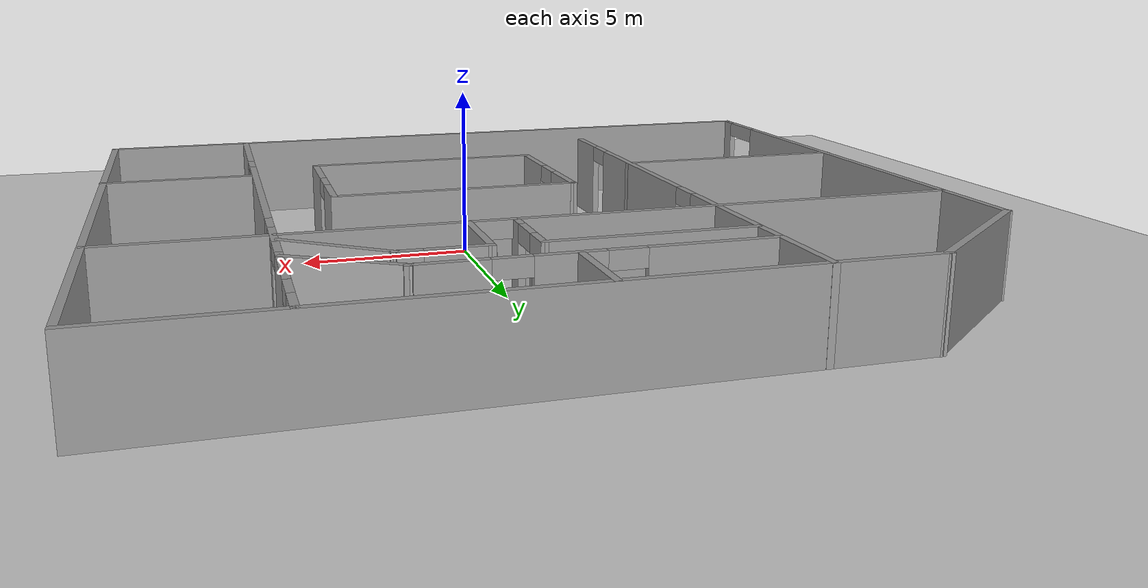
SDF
<sdf version="1.4">
 <world name="default">
  <light name="sun" type="directional">
   <pose>0 0 10 0 -0 0</pose>
   <diffuse>0.8 0.8 0.8 1</diffuse>
   <specular>0.2 0.2 0.2 1</specular>
   <attenuation>
    <range>1000</range>
    <constant>0.9</constant>
    <linear>0.01</linear>
    <quadratic>0.001</quadratic>
   </attenuation>
   <direction>-0.5 0.1 -0.9</direction>
  </light>
  <model name="ground_plane">
   <static>1</static>
   <link name="link">
    <collision name="collision">
     <geometry><plane><normal>0 0 1</normal><size>100 100</size></plane></geometry>
     <surface><friction><ode><mu>100</mu><mu2>50</mu2></ode></friction></surface>
    </collision>
    <visual name="visual">
     <cast_shadows>0</cast_shadows>
     <geometry><plane><normal>0 0 1</normal><size>100 100</size></plane></geometry>
     <material>
      <script><uri>file://media/materials/scripts/gazebo.material</uri><name>Gazebo/Grey</name></script>
     </material>
    </visual>
    <velocity_decay><linear>0</linear><angular>0</angular></velocity_decay>
   </link>
  </model>
  <physics type="ode">
   <max_step_size>0.001</max_step_size>
   <real_time_factor>1</real_time_factor>
   <real_time_update_rate>1000</real_time_update_rate>
   <gravity>0 0 -9.8</gravity>
  </physics>
  <scene><ambient>0.4 0.4 0.4 1</ambient><background>0.7 0.7 0.7 1</background><shadows>1</shadows></scene>
  <spherical_coordinates>
   <surface_model>EARTH_WGS84</surface_model>
   <latitude_deg>0</latitude_deg>
   <longitude_deg>0</longitude_deg>
   <elevation>0</elevation>
   <heading_deg>0</heading_deg>
  </spherical_coordinates>
  <model name="Assignment3">
   <link name="Wall_11">
    <collision name="Wall_11_Collision">
     <geometry><box><size>19.4074 0.2 2.5</size></box></geometry>
     <pose>0 0 1.25 0 -0 0</pose>
    </collision>
    <visual name="Wall_11_Visual">
     <pose>0 0 1.25 0 -0 0</pose>
     <geometry><box><size>19.4074 0.2 2.5</size></box></geometry>
     <material>
      <script><uri>file://media/materials/scripts/gazebo.material</uri><name>Gazebo/Grey</name></script>
     </material>
    </visual>
    <velocity_decay><linear>0</linear><angular>0</angular></velocity_decay>
    <pose>0.027658 9.62842 0 0 -0 0</pose>
   </link>
   <link name="Wall_12">
    <collision name="Wall_12_Collision">
     <geometry><box><size>19.7819 0.2 2.5</size></box></geometry>
     <pose>0 0 1.25 0 -0 0</pose>
    </collision>
    <visual name="Wall_12_Visual">
     <pose>0 0 1.25 0 -0 0</pose>
     <geometry><box><size>19.7819 0.2 2.5</size></box></geometry>
     <material>
      <script><uri>file://media/materials/scripts/gazebo.material</uri><name>Gazebo/Grey</name></script>
     </material>
    </visual>
    <velocity_decay><linear>0</linear><angular>0</angular></velocity_decay>
    <pose>9.63136 -0.162543 0 0 0 -1.5708</pose>
   </link>
   <link name="Wall_13">
    <collision name="Wall_13_Collision">
     <geometry><box><size>23.541 0.2 2.5</size></box></geometry>
     <pose>0 0 1.25 0 -0 0</pose>
    </collision>
    <visual name="Wall_13_Visual">
     <pose>0 0 1.25 0 -0 0</pose>
     <geometry><box><size>23.541 0.2 2.5</size></box></geometry>
     <material>
      <script><uri>file://media/materials/scripts/gazebo.material</uri><name>Gazebo/Grey</name></script>
     </material>
    </visual>
    <velocity_decay><linear>0</linear><angular>0</angular></velocity_decay>
    <pose>-2.03882 -10.0482 0 0 0 -3.13347</pose>
   </link>
   <link name="Wall_14">
    <pose>-13.709 -1.8545 0 0 -0 1.5708</pose>
    <visual name="Wall_14_Visual_0">
     <pose>-8.04138 0 1.25 0 -0 0</pose>
     <geometry><box><size>0.694477 0.2 2.5</size></box></geometry>
     <material>
      <script><uri>file://media/materials/scripts/gazebo.material</uri><name>Gazebo/Grey</name></script>
     </material>
    </visual>
    <collision name="Wall_14_Collision_0">
     <geometry><box><size>0.694477 0.2 2.5</size></box></geometry>
     <pose>-8.04138 0 1.25 0 -0 0</pose>
    </collision>
    <visual name="Wall_14_Visual_1">
     <pose>1.17291 0 1.25 0 -0 0</pose>
     <geometry><box><size>14.4314 0.2 2.5</size></box></geometry>
     <material>
      <script><uri>file://media/materials/scripts/gazebo.material</uri><name>Gazebo/Grey</name></script>
     </material>
    </visual>
    <collision name="Wall_14_Collision_1">
     <geometry><box><size>14.4314 0.2 2.5</size></box></geometry>
     <pose>1.17291 0 1.25 0 -0 0</pose>
    </collision>
    <visual name="Wall_14_Visual_2">
     <pose>-6.86847 0 2.25 0 -0 0</pose>
     <geometry><box><size>1.65133 0.2 0.5</size></box></geometry>
     <material>
      <script><uri>file://media/materials/scripts/gazebo.material</uri><name>Gazebo/Grey</name></script>
     </material>
    </visual>
    <collision name="Wall_14_Collision_2">
     <geometry><box><size>1.65133 0.2 0.5</size></box></geometry>
     <pose>-6.86847 0 2.25 0 -0 0</pose>
    </collision>
    <velocity_decay><linear>0</linear><angular>0</angular></velocity_decay>
   </link>
   <link name="Wall_15">
    <collision name="Wall_15_Collision">
     <geometry><box><size>5.44757 0.2 2.5</size></box></geometry>
     <pose>0 0 1.25 0 -0 0</pose>
    </collision>
    <visual name="Wall_15_Visual">
     <pose>0 0 1.25 0 -0 0</pose>
     <geometry><box><size>5.44757 0.2 2.5</size></box></geometry>
     <material>
      <script><uri>file://media/materials/scripts/gazebo.material</uri><name>Gazebo/Grey</name></script>
     </material>
    </visual>
    <velocity_decay><linear>0</linear><angular>0</angular></velocity_decay>
    <pose>-11.6272 8.03121 0 0 -0 0.65444</pose>
   </link>
   <link name="Wall_17">
    <pose>-2.05638 3.72603 0 0 -0 0</pose>
    <visual name="Wall_17_Visual_0">
     <pose>-5.32172 0 1.25 0 -0 0</pose>
     <geometry><box><size>12.865 0.2 2.5</size></box></geometry>
     <material>
      <script><uri>file://media/materials/scripts/gazebo.material</uri><name>Gazebo/Grey</name></script>
     </material>
    </visual>
    <collision name="Wall_17_Collision_0">
     <geometry><box><size>12.865 0.2 2.5</size></box></geometry>
     <pose>-5.32172 0 1.25 0 -0 0</pose>
    </collision>
    <visual name="Wall_17_Visual_1">
     <pose>7.09252 0 1.25 0 -0 0</pose>
     <geometry><box><size>9.32345 0.2 2.5</size></box></geometry>
     <material>
      <script><uri>file://media/materials/scripts/gazebo.material</uri><name>Gazebo/Grey</name></script>
     </material>
    </visual>
    <collision name="Wall_17_Collision_1">
     <geometry><box><size>9.32345 0.2 2.5</size></box></geometry>
     <pose>7.09252 0 1.25 0 -0 0</pose>
    </collision>
    <visual name="Wall_17_Visual_2">
     <pose>1.77079 0 2.25 0 -0 0</pose>
     <geometry><box><size>1.32 0.2 0.5</size></box></geometry>
     <material>
      <script><uri>file://media/materials/scripts/gazebo.material</uri><name>Gazebo/Grey</name></script>
     </material>
    </visual>
    <collision name="Wall_17_Collision_2">
     <geometry><box><size>1.32 0.2 0.5</size></box></geometry>
     <pose>1.77079 0 2.25 0 -0 0</pose>
    </collision>
    <velocity_decay><linear>0</linear><angular>0</angular></velocity_decay>
   </link>
   <link name="Wall_19">
    <pose>5.225 -0.1585 0 0 0 -1.5708</pose>
    <visual name="Wall_19_Visual_0">
     <pose>-9.32361 0 1.25 0 -0 0</pose>
     <geometry><box><size>1.04631 0.2 2.5</size></box></geometry>
     <material>
      <script><uri>file://media/materials/scripts/gazebo.material</uri><name>Gazebo/Grey</name></script>
     </material>
    </visual>
    <collision name="Wall_19_Collision_0">
     <geometry><box><size>1.04631 0.2 2.5</size></box></geometry>
     <pose>-9.32361 0 1.25 0 -0 0</pose>
    </collision>
    <visual name="Wall_19_Visual_1">
     <pose>-6.67404 0 1.25 0 -0 0</pose>
     <geometry><box><size>2.25282 0.2 2.5</size></box></geometry>
     <material>
      <script><uri>file://media/materials/scripts/gazebo.material</uri><name>Gazebo/Grey</name></script>
     </material>
    </visual>
    <collision name="Wall_19_Collision_1">
     <geometry><box><size>2.25282 0.2 2.5</size></box></geometry>
     <pose>-6.67404 0 1.25 0 -0 0</pose>
    </collision>
    <visual name="Wall_19_Visual_2">
     <pose>-3.81282 0 1.25 0 -0 0</pose>
     <geometry><box><size>1.46962 0.2 2.5</size></box></geometry>
     <material>
      <script><uri>file://media/materials/scripts/gazebo.material</uri><name>Gazebo/Grey</name></script>
     </material>
    </visual>
    <collision name="Wall_19_Collision_2">
     <geometry><box><size>1.46962 0.2 2.5</size></box></geometry>
     <pose>-3.81282 0 1.25 0 -0 0</pose>
    </collision>
    <visual name="Wall_19_Visual_3">
     <pose>1.53936 0 1.25 0 -0 0</pose>
     <geometry><box><size>7.23473 0.2 2.5</size></box></geometry>
     <material>
      <script><uri>file://media/materials/scripts/gazebo.material</uri><name>Gazebo/Grey</name></script>
     </material>
    </visual>
    <collision name="Wall_19_Collision_3">
     <geometry><box><size>7.23473 0.2 2.5</size></box></geometry>
     <pose>1.53936 0 1.25 0 -0 0</pose>
    </collision>
    <visual name="Wall_19_Visual_4">
     <pose>8.00174 0 1.25 0 -0 0</pose>
     <geometry><box><size>3.69003 0.2 2.5</size></box></geometry>
     <material>
      <script><uri>file://media/materials/scripts/gazebo.material</uri><name>Gazebo/Grey</name></script>
     </material>
    </visual>
    <collision name="Wall_19_Collision_4">
     <geometry><box><size>3.69003 0.2 2.5</size></box></geometry>
     <pose>8.00174 0 1.25 0 -0 0</pose>
    </collision>
    <visual name="Wall_19_Visual_5">
     <pose>-8.30045 0 2.25 0 -0 0</pose>
     <geometry><box><size>1 0.2 0.5</size></box></geometry>
     <material>
      <script><uri>file://media/materials/scripts/gazebo.material</uri><name>Gazebo/Grey</name></script>
     </material>
    </visual>
    <collision name="Wall_19_Collision_5">
     <geometry><box><size>1 0.2 0.5</size></box></geometry>
     <pose>-8.30045 0 2.25 0 -0 0</pose>
    </collision>
    <visual name="Wall_19_Visual_6">
     <pose>-5.04763 0 2.25 0 -0 0</pose>
     <geometry><box><size>1 0.2 0.5</size></box></geometry>
     <material>
      <script><uri>file://media/materials/scripts/gazebo.material</uri><name>Gazebo/Grey</name></script>
     </material>
    </visual>
    <collision name="Wall_19_Collision_6">
     <geometry><box><size>1 0.2 0.5</size></box></geometry>
     <pose>-5.04763 0 2.25 0 -0 0</pose>
    </collision>
    <visual name="Wall_19_Visual_7">
     <pose>-2.57801 0 2.25 0 -0 0</pose>
     <geometry><box><size>1 0.2 0.5</size></box></geometry>
     <material>
      <script><uri>file://media/materials/scripts/gazebo.material</uri><name>Gazebo/Grey</name></script>
     </material>
    </visual>
    <collision name="Wall_19_Collision_7">
     <geometry><box><size>1 0.2 0.5</size></box></geometry>
     <pose>-2.57801 0 2.25 0 -0 0</pose>
    </collision>
    <visual name="Wall_19_Visual_8">
     <pose>5.65672 0 2.25 0 -0 0</pose>
     <geometry><box><size>1 0.2 0.5</size></box></geometry>
     <material>
      <script><uri>file://media/materials/scripts/gazebo.material</uri><name>Gazebo/Grey</name></script>
     </material>
    </visual>
    <collision name="Wall_19_Collision_8">
     <geometry><box><size>1 0.2 0.5</size></box></geometry>
     <pose>5.65672 0 2.25 0 -0 0</pose>
    </collision>
    <velocity_decay><linear>0</linear><angular>0</angular></velocity_decay>
   </link>
   <link name="Wall_21">
    <pose>-6.59246 1.07417 0 0 0 -1.5708</pose>
    <visual name="Wall_21_Visual_0">
     <pose>-7.3949 0 1.25 0 -0 0</pose>
     <geometry><box><size>2.53101 0.2 2.5</size></box></geometry>
     <material>
      <script><uri>file://media/materials/scripts/gazebo.material</uri><name>Gazebo/Grey</name></script>
     </material>
    </visual>
    <collision name="Wall_21_Collision_0">
     <geometry><box><size>2.53101 0.2 2.5</size></box></geometry>
     <pose>-7.3949 0 1.25 0 -0 0</pose>
    </collision>
    <visual name="Wall_21_Visual_1">
     <pose>-3.13844 0 1.25 0 -0 0</pose>
     <geometry><box><size>3.98191 0.2 2.5</size></box></geometry>
     <material>
      <script><uri>file://media/materials/scripts/gazebo.material</uri><name>Gazebo/Grey</name></script>
     </material>
    </visual>
    <collision name="Wall_21_Collision_1">
     <geometry><box><size>3.98191 0.2 2.5</size></box></geometry>
     <pose>-3.13844 0 1.25 0 -0 0</pose>
    </collision>
    <visual name="Wall_21_Visual_2">
     <pose>2.9116 0 1.25 0 -0 0</pose>
     <geometry><box><size>6.11816 0.2 2.5</size></box></geometry>
     <material>
      <script><uri>file://media/materials/scripts/gazebo.material</uri><name>Gazebo/Grey</name></script>
     </material>
    </visual>
    <collision name="Wall_21_Collision_2">
     <geometry><box><size>6.11816 0.2 2.5</size></box></geometry>
     <pose>2.9116 0 1.25 0 -0 0</pose>
    </collision>
    <visual name="Wall_21_Visual_3">
     <pose>7.81554 0 1.25 0 -0 0</pose>
     <geometry><box><size>1.68972 0.2 2.5</size></box></geometry>
     <material>
      <script><uri>file://media/materials/scripts/gazebo.material</uri><name>Gazebo/Grey</name></script>
     </material>
    </visual>
    <collision name="Wall_21_Collision_3">
     <geometry><box><size>1.68972 0.2 2.5</size></box></geometry>
     <pose>7.81554 0 1.25 0 -0 0</pose>
    </collision>
    <visual name="Wall_21_Visual_4">
     <pose>-5.62939 0 2.25 0 -0 0</pose>
     <geometry><box><size>1 0.2 0.5</size></box></geometry>
     <material>
      <script><uri>file://media/materials/scripts/gazebo.material</uri><name>Gazebo/Grey</name></script>
     </material>
    </visual>
    <collision name="Wall_21_Collision_4">
     <geometry><box><size>1 0.2 0.5</size></box></geometry>
     <pose>-5.62939 0 2.25 0 -0 0</pose>
    </collision>
    <visual name="Wall_21_Visual_5">
     <pose>-0.647479 0 2.25 0 -0 0</pose>
     <geometry><box><size>1 0.2 0.5</size></box></geometry>
     <material>
      <script><uri>file://media/materials/scripts/gazebo.material</uri><name>Gazebo/Grey</name></script>
     </material>
    </visual>
    <collision name="Wall_21_Collision_5">
     <geometry><box><size>1 0.2 0.5</size></box></geometry>
     <pose>-0.647479 0 2.25 0 -0 0</pose>
    </collision>
    <visual name="Wall_21_Visual_6">
     <pose>6.47068 0 2.25 0 -0 0</pose>
     <geometry><box><size>1 0.2 0.5</size></box></geometry>
     <material>
      <script><uri>file://media/materials/scripts/gazebo.material</uri><name>Gazebo/Grey</name></script>
     </material>
    </visual>
    <collision name="Wall_21_Collision_6">
     <geometry><box><size>1 0.2 0.5</size></box></geometry>
     <pose>6.47068 0 2.25 0 -0 0</pose>
    </collision>
    <velocity_decay><linear>0</linear><angular>0</angular></velocity_decay>
   </link>
   <link name="Wall_25">
    <collision name="Wall_25_Collision">
     <geometry><box><size>4.57325 0.2 2.5</size></box></geometry>
     <pose>0 0 1.25 0 -0 0</pose>
    </collision>
    <visual name="Wall_25_Visual">
     <pose>0 0 1.25 0 -0 0</pose>
     <geometry><box><size>4.57325 0.2 2.5</size></box></geometry>
     <material>
      <script><uri>file://media/materials/scripts/gazebo.material</uri><name>Gazebo/Grey</name></script>
     </material>
    </visual>
    <velocity_decay><linear>0</linear><angular>0</angular></velocity_decay>
    <pose>7.45776 -3.90389 0 0 -0 0</pose>
   </link>
   <link name="Wall_27">
    <collision name="Wall_27_Collision">
     <geometry><box><size>7.27163 0.2 2.5</size></box></geometry>
     <pose>0 0 1.25 0 -0 0</pose>
    </collision>
    <visual name="Wall_27_Visual">
     <pose>0 0 1.25 0 -0 0</pose>
     <geometry><box><size>7.27163 0.2 2.5</size></box></geometry>
     <material>
      <script><uri>file://media/materials/scripts/gazebo.material</uri><name>Gazebo/Grey</name></script>
     </material>
    </visual>
    <velocity_decay><linear>0</linear><angular>0</angular></velocity_decay>
    <pose>-0.265014 -0.228249 0 0 -0 7.1e-05</pose>
   </link>
   <link name="Wall_28">
    <pose>3.271 -2.601 0 0 0 -1.5708</pose>
    <visual name="Wall_28_Visual_0">
     <pose>-1.57737 0 1.25 0 -0 0</pose>
     <geometry><box><size>1.7907 0.2 2.5</size></box></geometry>
     <material>
      <script><uri>file://media/materials/scripts/gazebo.material</uri><name>Gazebo/Grey</name></script>
     </material>
    </visual>
    <collision name="Wall_28_Collision_0">
     <geometry><box><size>1.7907 0.2 2.5</size></box></geometry>
     <pose>-1.57737 0 1.25 0 -0 0</pose>
    </collision>
    <visual name="Wall_28_Visual_1">
     <pose>1.39535 0 1.25 0 -0 0</pose>
     <geometry><box><size>2.15474 0.2 2.5</size></box></geometry>
     <material>
      <script><uri>file://media/materials/scripts/gazebo.material</uri><name>Gazebo/Grey</name></script>
     </material>
    </visual>
    <collision name="Wall_28_Collision_1">
     <geometry><box><size>2.15474 0.2 2.5</size></box></geometry>
     <pose>1.39535 0 1.25 0 -0 0</pose>
    </collision>
    <visual name="Wall_28_Visual_2">
     <pose>-0.182021 0 2.25 0 -0 0</pose>
     <geometry><box><size>1 0.2 0.5</size></box></geometry>
     <material>
      <script><uri>file://media/materials/scripts/gazebo.material</uri><name>Gazebo/Grey</name></script>
     </material>
    </visual>
    <collision name="Wall_28_Collision_2">
     <geometry><box><size>1 0.2 0.5</size></box></geometry>
     <pose>-0.182021 0 2.25 0 -0 0</pose>
    </collision>
    <velocity_decay><linear>0</linear><angular>0</angular></velocity_decay>
   </link>
   <link name="Wall_29">
    <collision name="Wall_29_Collision">
     <geometry><box><size>7.22511 0.2 2.5</size></box></geometry>
     <pose>0 0 1.25 0 -0 0</pose>
    </collision>
    <visual name="Wall_29_Visual">
     <pose>0 0 1.25 0 -0 0</pose>
     <geometry><box><size>7.22511 0.2 2.5</size></box></geometry>
     <material>
      <script><uri>file://media/materials/scripts/gazebo.material</uri><name>Gazebo/Grey</name></script>
     </material>
    </visual>
    <velocity_decay><linear>0</linear><angular>0</angular></velocity_decay>
    <pose>-0.241752 -4.97397 0 0 -0 3.14158</pose>
   </link>
   <link name="Wall_30">
    <pose>-3.77777 -2.60122 0 0 -0 1.5806</pose>
    <visual name="Wall_30_Visual_0">
     <pose>-1.44275 0 1.25 0 -0 0</pose>
     <geometry><box><size>2.06017 0.2 2.5</size></box></geometry>
     <material>
      <script><uri>file://media/materials/scripts/gazebo.material</uri><name>Gazebo/Grey</name></script>
     </material>
    </visual>
    <collision name="Wall_30_Collision_0">
     <geometry><box><size>2.06017 0.2 2.5</size></box></geometry>
     <pose>-1.44275 0 1.25 0 -0 0</pose>
    </collision>
    <visual name="Wall_30_Visual_1">
     <pose>1.53008 0 1.25 0 -0 0</pose>
     <geometry><box><size>1.8855 0.2 2.5</size></box></geometry>
     <material>
      <script><uri>file://media/materials/scripts/gazebo.material</uri><name>Gazebo/Grey</name></script>
     </material>
    </visual>
    <collision name="Wall_30_Collision_1">
     <geometry><box><size>1.8855 0.2 2.5</size></box></geometry>
     <pose>1.53008 0 1.25 0 -0 0</pose>
    </collision>
    <visual name="Wall_30_Visual_2">
     <pose>0.087335 0 2.25 0 -0 0</pose>
     <geometry><box><size>1 0.2 0.5</size></box></geometry>
     <material>
      <script><uri>file://media/materials/scripts/gazebo.material</uri><name>Gazebo/Grey</name></script>
     </material>
    </visual>
    <collision name="Wall_30_Collision_2">
     <geometry><box><size>1 0.2 0.5</size></box></geometry>
     <pose>0.087335 0 2.25 0 -0 0</pose>
    </collision>
    <velocity_decay><linear>0</linear><angular>0</angular></velocity_decay>
   </link>
   <link name="Wall_32">
    <pose>-1.9866 7.26185 0 0 -0 0</pose>
    <visual name="Wall_32_Visual_0">
     <pose>-2.89227 0 1.25 0 -0 0</pose>
     <geometry><box><size>3.53416 0.2 2.5</size></box></geometry>
     <material>
      <script><uri>file://media/materials/scripts/gazebo.material</uri><name>Gazebo/Grey</name></script>
     </material>
    </visual>
    <collision name="Wall_32_Collision_0">
     <geometry><box><size>3.53416 0.2 2.5</size></box></geometry>
     <pose>-2.89227 0 1.25 0 -0 0</pose>
    </collision>
    <visual name="Wall_32_Visual_1">
     <pose>0.77053 0 1.25 0 -0 0</pose>
     <geometry><box><size>1.79144 0.2 2.5</size></box></geometry>
     <material>
      <script><uri>file://media/materials/scripts/gazebo.material</uri><name>Gazebo/Grey</name></script>
     </material>
    </visual>
    <collision name="Wall_32_Collision_1">
     <geometry><box><size>1.79144 0.2 2.5</size></box></geometry>
     <pose>0.77053 0 1.25 0 -0 0</pose>
    </collision>
    <visual name="Wall_32_Visual_2">
     <pose>3.6628 0 1.25 0 -0 0</pose>
     <geometry><box><size>1.9931 0.2 2.5</size></box></geometry>
     <material>
      <script><uri>file://media/materials/scripts/gazebo.material</uri><name>Gazebo/Grey</name></script>
     </material>
    </visual>
    <collision name="Wall_32_Collision_2">
     <geometry><box><size>1.9931 0.2 2.5</size></box></geometry>
     <pose>3.6628 0 1.25 0 -0 0</pose>
    </collision>
    <visual name="Wall_32_Visual_3">
     <pose>-0.625187 0 2.25 0 -0 0</pose>
     <geometry><box><size>1 0.2 0.5</size></box></geometry>
     <material>
      <script><uri>file://media/materials/scripts/gazebo.material</uri><name>Gazebo/Grey</name></script>
     </material>
    </visual>
    <collision name="Wall_32_Collision_3">
     <geometry><box><size>1 0.2 0.5</size></box></geometry>
     <pose>-0.625187 0 2.25 0 -0 0</pose>
    </collision>
    <visual name="Wall_32_Visual_4">
     <pose>2.16625 0 2.25 0 -0 0</pose>
     <geometry><box><size>1 0.2 0.5</size></box></geometry>
     <material>
      <script><uri>file://media/materials/scripts/gazebo.material</uri><name>Gazebo/Grey</name></script>
     </material>
    </visual>
    <collision name="Wall_32_Collision_4">
     <geometry><box><size>1 0.2 0.5</size></box></geometry>
     <pose>2.16625 0 2.25 0 -0 0</pose>
    </collision>
    <velocity_decay><linear>0</linear><angular>0</angular></velocity_decay>
   </link>
   <link name="Wall_34">
    <collision name="Wall_34_Collision">
     <geometry><box><size>3.27103 0.2 2.5</size></box></geometry>
     <pose>0 0 1.25 0 -0 0</pose>
    </collision>
    <visual name="Wall_34_Visual">
     <pose>0 0 1.25 0 -0 0</pose>
     <geometry><box><size>3.27103 0.2 2.5</size></box></geometry>
     <material>
      <script><uri>file://media/materials/scripts/gazebo.material</uri><name>Gazebo/Grey</name></script>
     </material>
    </visual>
    <velocity_decay><linear>0</linear><angular>0</angular></velocity_decay>
    <pose>3.85602 6.49409 0 0 0 -0.523599</pose>
   </link>
   <link name="Wall_36">
    <collision name="Wall_36_Collision">
     <geometry><box><size>5.82952 0.2 2.5</size></box></geometry>
     <pose>0 0 1.25 0 -0 0</pose>
    </collision>
    <visual name="Wall_36_Visual">
     <pose>0 0 1.25 0 -0 0</pose>
     <geometry><box><size>5.82952 0.2 2.5</size></box></geometry>
     <material>
      <script><uri>file://media/materials/scripts/gazebo.material</uri><name>Gazebo/Grey</name></script>
     </material>
    </visual>
    <velocity_decay><linear>0</linear><angular>0</angular></velocity_decay>
    <pose>-3.731 6.145 0 0 -0 0</pose>
   </link>
   <link name="Wall_37">
    <pose>-0.9165 4.976 0 0 0 -1.57122</pose>
    <visual name="Wall_37_Visual_0">
     <pose>-0.792615 0 1.25 0 -0 0</pose>
     <geometry><box><size>0.952773 0.2 2.5</size></box></geometry>
     <material>
      <script><uri>file://media/materials/scripts/gazebo.material</uri><name>Gazebo/Grey</name></script>
     </material>
    </visual>
    <collision name="Wall_37_Collision_0">
     <geometry><box><size>0.952773 0.2 2.5</size></box></geometry>
     <pose>-0.792615 0 1.25 0 -0 0</pose>
    </collision>
    <visual name="Wall_37_Visual_1">
     <pose>0.976387 0 1.25 0 -0 0</pose>
     <geometry><box><size>0.585229 0.2 2.5</size></box></geometry>
     <material>
      <script><uri>file://media/materials/scripts/gazebo.material</uri><name>Gazebo/Grey</name></script>
     </material>
    </visual>
    <collision name="Wall_37_Collision_1">
     <geometry><box><size>0.585229 0.2 2.5</size></box></geometry>
     <pose>0.976387 0 1.25 0 -0 0</pose>
    </collision>
    <visual name="Wall_37_Visual_2">
     <pose>0.183772 0 2.25 0 -0 0</pose>
     <geometry><box><size>1 0.2 0.5</size></box></geometry>
     <material>
      <script><uri>file://media/materials/scripts/gazebo.material</uri><name>Gazebo/Grey</name></script>
     </material>
    </visual>
    <collision name="Wall_37_Collision_2">
     <geometry><box><size>1 0.2 0.5</size></box></geometry>
     <pose>0.183772 0 2.25 0 -0 0</pose>
    </collision>
    <velocity_decay><linear>0</linear><angular>0</angular></velocity_decay>
   </link>
   <link name="Wall_39">
    <collision name="Wall_39_Collision">
     <geometry><box><size>2.51934 0.2 2.5</size></box></geometry>
     <pose>0 0 1.25 0 -0 0</pose>
    </collision>
    <visual name="Wall_39_Visual">
     <pose>0 0 1.25 0 -0 0</pose>
     <geometry><box><size>2.51934 0.2 2.5</size></box></geometry>
     <material>
      <script><uri>file://media/materials/scripts/gazebo.material</uri><name>Gazebo/Grey</name></script>
     </material>
    </visual>
    <velocity_decay><linear>0</linear><angular>0</angular></velocity_decay>
    <pose>0.346 4.939 0 0 -0 1.5708</pose>
   </link>
   <link name="Wall_40">
    <pose>1.506 6.0855 0 0 0 -0.011637</pose>
    <visual name="Wall_40_Visual_0">
     <pose>-0.891544 0 1.25 0 -0 0</pose>
     <geometry><box><size>0.736585 0.2 2.5</size></box></geometry>
     <material>
      <script><uri>file://media/materials/scripts/gazebo.material</uri><name>Gazebo/Grey</name></script>
     </material>
    </visual>
    <collision name="Wall_40_Collision_0">
     <geometry><box><size>0.736585 0.2 2.5</size></box></geometry>
     <pose>-0.891544 0 1.25 0 -0 0</pose>
    </collision>
    <visual name="Wall_40_Visual_1">
     <pose>0.868292 0 1.25 0 -0 0</pose>
     <geometry><box><size>0.783087 0.2 2.5</size></box></geometry>
     <material>
      <script><uri>file://media/materials/scripts/gazebo.material</uri><name>Gazebo/Grey</name></script>
     </material>
    </visual>
    <collision name="Wall_40_Collision_1">
     <geometry><box><size>0.783087 0.2 2.5</size></box></geometry>
     <pose>0.868292 0 1.25 0 -0 0</pose>
    </collision>
    <visual name="Wall_40_Visual_2">
     <pose>-0.023251 0 2.25 0 -0 0</pose>
     <geometry><box><size>1 0.2 0.5</size></box></geometry>
     <material>
      <script><uri>file://media/materials/scripts/gazebo.material</uri><name>Gazebo/Grey</name></script>
     </material>
    </visual>
    <collision name="Wall_40_Collision_2">
     <geometry><box><size>1 0.2 0.5</size></box></geometry>
     <pose>-0.023251 0 2.25 0 -0 0</pose>
    </collision>
    <velocity_decay><linear>0</linear><angular>0</angular></velocity_decay>
   </link>
   <link name="Wall_41">
    <collision name="Wall_41_Collision">
     <geometry><box><size>3.30743 0.2 2.5</size></box></geometry>
     <pose>0 0 1.25 0 -0 0</pose>
    </collision>
    <visual name="Wall_41_Visual">
     <pose>0 0 1.25 0 -0 0</pose>
     <geometry><box><size>3.30743 0.2 2.5</size></box></geometry>
     <material>
      <script><uri>file://media/materials/scripts/gazebo.material</uri><name>Gazebo/Grey</name></script>
     </material>
    </visual>
    <velocity_decay><linear>0</linear><angular>0</angular></velocity_decay>
    <pose>3.91127 5.14307 0 0 0 -0.640915</pose>
   </link>
   <link name="Wall_43">
    <collision name="Wall_43_Collision">
     <geometry><box><size>2.38662 0.2 2.5</size></box></geometry>
     <pose>0 0 1.25 0 -0 0</pose>
    </collision>
    <visual name="Wall_43_Visual">
     <pose>0 0 1.25 0 -0 0</pose>
     <geometry><box><size>2.38662 0.2 2.5</size></box></geometry>
     <material>
      <script><uri>file://media/materials/scripts/gazebo.material</uri><name>Gazebo/Grey</name></script>
     </material>
    </visual>
    <velocity_decay><linear>0</linear><angular>0</angular></velocity_decay>
    <pose>-1.45804 8.50126 0 0 -0 1.5708</pose>
   </link>
   <link name="Wall_45">
    <collision name="Wall_45_Collision">
     <geometry><box><size>7.36468 0.2 2.5</size></box></geometry>
     <pose>0 0 1.25 0 -0 0</pose>
    </collision>
    <visual name="Wall_45_Visual">
     <pose>0 0 1.25 0 -0 0</pose>
     <geometry><box><size>7.36468 0.2 2.5</size></box></geometry>
     <material>
      <script><uri>file://media/materials/scripts/gazebo.material</uri><name>Gazebo/Grey</name></script>
     </material>
    </visual>
    <velocity_decay><linear>0</linear><angular>0</angular></velocity_decay>
    <pose>-10.158 -2.68774 0 0 -0 0</pose>
   </link>
   <static>1</static>
   <pose>1 2.42808 0 0 -0 0</pose>
  </model>
 </world>
</sdf>
